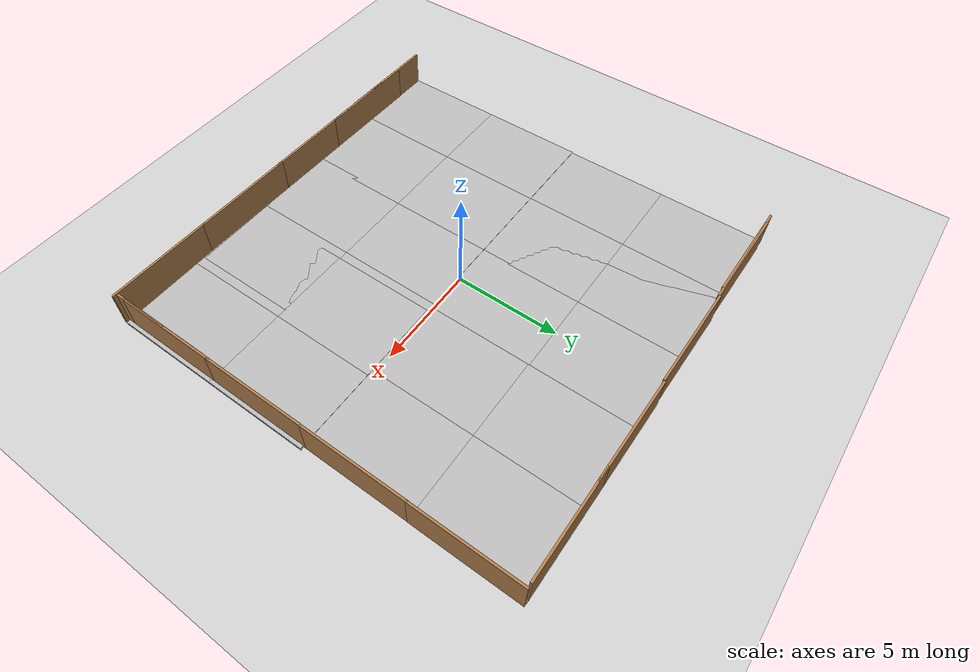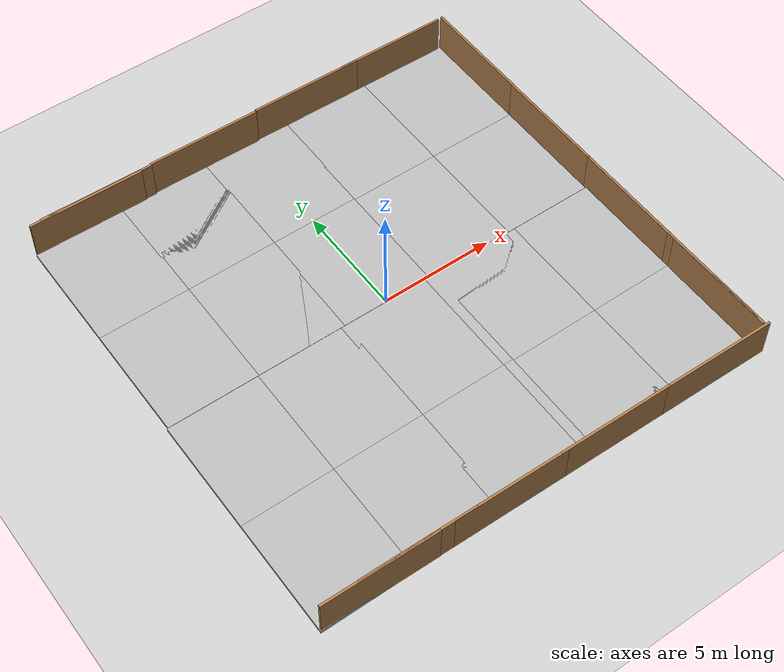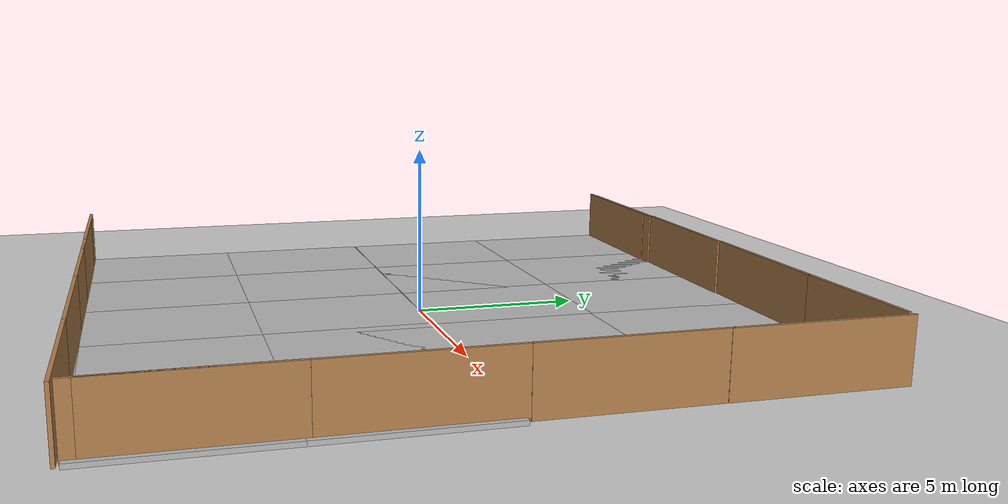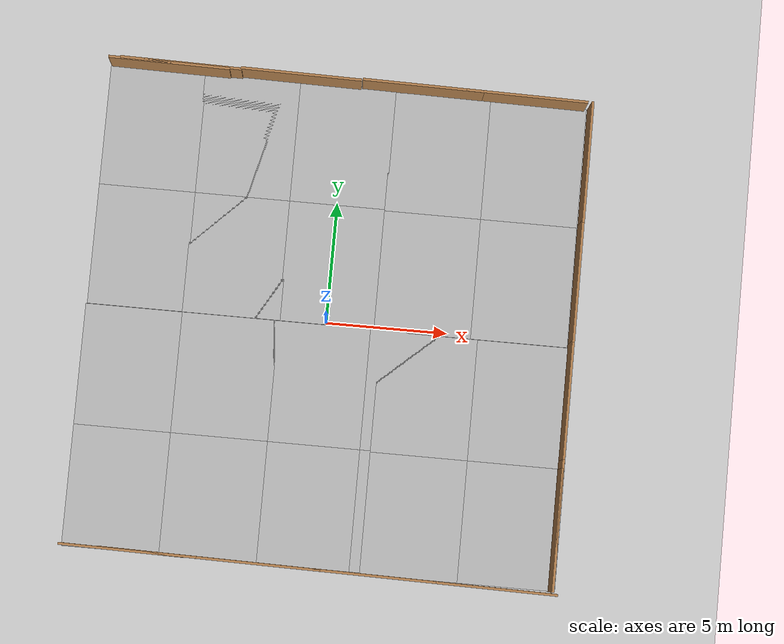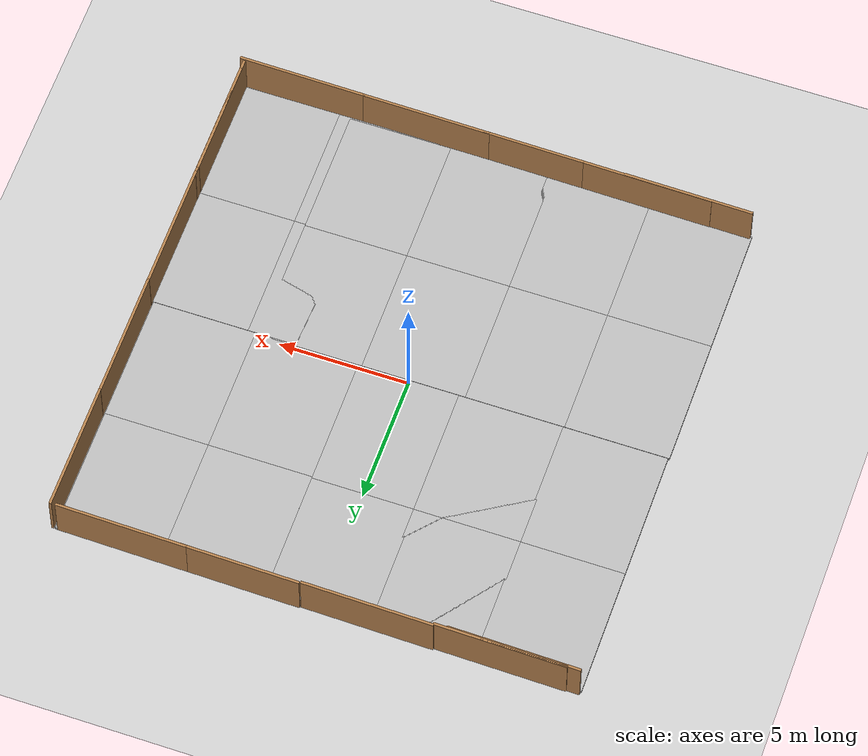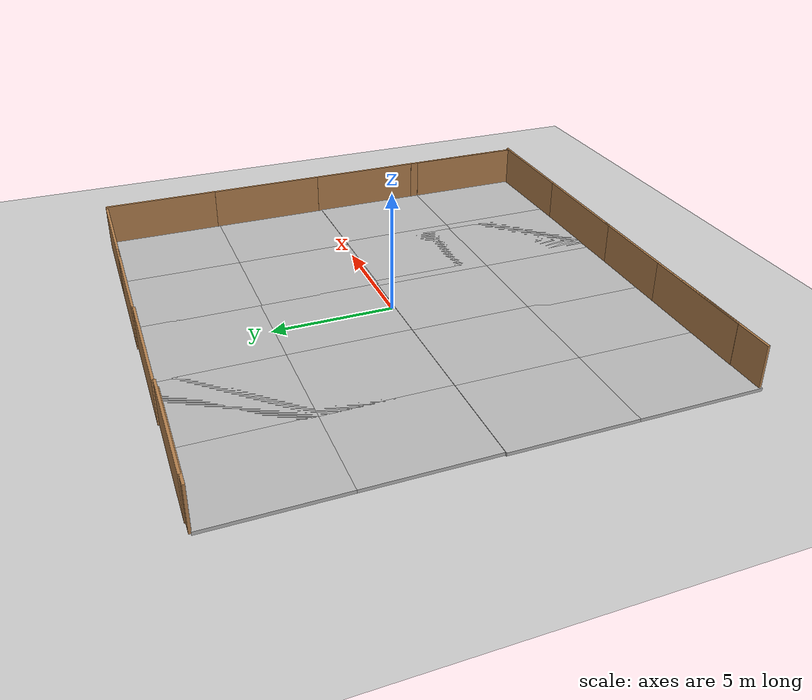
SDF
<sdf version="1.7">
 <world name="default">
  <model name="ground_plane">
   <static>1</static>
   <link name="link">
    <collision name="collision">
     <geometry><plane><normal>0 0 1</normal><size>100 100</size></plane></geometry>
     <surface><friction><ode><mu>100</mu><mu2>50</mu2></ode></friction></surface>
    </collision>
    <visual name="visual">
     <cast_shadows>0</cast_shadows>
     <geometry><plane><normal>0 0 1</normal><size>100 100</size></plane></geometry>
     <material>
      <script><uri>file://media/materials/scripts/gazebo.material</uri><name>Gazebo/Grey</name></script>
     </material>
    </visual>
   </link>
  </model>
  <gravity>0 0 -9.8</gravity>
  <magnetic_field>6e-06 2.3e-05 -4.2e-05</magnetic_field>
  <atmosphere type="adiabatic"/>
  <physics name="default_physics" default="0" type="ode">
   <max_step_size>0.001</max_step_size>
   <real_time_factor>1</real_time_factor>
   <real_time_update_rate>1000</real_time_update_rate>
  </physics>
  <scene><ambient>0.4 0.4 0.4 1</ambient><background>0.7 0.7 0.7 1</background><shadows>1</shadows></scene>
  <spherical_coordinates>
   <surface_model>EARTH_WGS84</surface_model>
   <latitude_deg>0</latitude_deg>
   <longitude_deg>0</longitude_deg>
   <elevation>0</elevation>
   <heading_deg>0</heading_deg>
  </spherical_coordinates>
  <model name="fence_clone_1">
   <static>1</static>
   <link name="link">
    <pose>0 0 0.915 0 -0 0</pose>
    <collision name="collision"><geometry><box><size>0.1 5 1.83</size></box></geometry></collision>
    <visual name="visual">
     <cast_shadows>0</cast_shadows>
     <geometry><box><size>0.1 5 1.83</size></box></geometry>
     <material>
      <script>
       <uri>https://fuel.gazebosim.org/1.0/athackst/models/fence/2/files/materials/scripts</uri>
       <uri>https://fuel.gazebosim.org/1.0/athackst/models/fence/2/files/materials/textures</uri>
       <name>Fence/WoodBoarding</name>
      </script>
     </material>
    </visual>
   </link>
   <pose>10.0636 7.36821 0 0 -0 0</pose>
  </model>
  <model name="fence_clone_2">
   <static>1</static>
   <link name="link">
    <pose>0 0 0.915 0 -0 0</pose>
    <collision name="collision"><geometry><box><size>0.1 5 1.83</size></box></geometry></collision>
    <visual name="visual">
     <cast_shadows>0</cast_shadows>
     <geometry><box><size>0.1 5 1.83</size></box></geometry>
     <material>
      <script>
       <uri>https://fuel.gazebosim.org/1.0/athackst/models/fence/2/files/materials/scripts</uri>
       <uri>https://fuel.gazebosim.org/1.0/athackst/models/fence/2/files/materials/textures</uri>
       <name>Fence/WoodBoarding</name>
      </script>
     </material>
    </visual>
   </link>
   <pose>10.056 2.45698 0 0 -0 0</pose>
  </model>
  <model name="fence_clone_3">
   <static>1</static>
   <link name="link">
    <pose>0 0 0.915 0 -0 0</pose>
    <collision name="collision"><geometry><box><size>0.1 5 1.83</size></box></geometry></collision>
    <visual name="visual">
     <cast_shadows>0</cast_shadows>
     <geometry><box><size>0.1 5 1.83</size></box></geometry>
     <material>
      <script>
       <uri>https://fuel.gazebosim.org/1.0/athackst/models/fence/2/files/materials/scripts</uri>
       <uri>https://fuel.gazebosim.org/1.0/athackst/models/fence/2/files/materials/textures</uri>
       <name>Fence/WoodBoarding</name>
      </script>
     </material>
    </visual>
   </link>
   <pose>10.05 -2.48927 0 0 -0 0</pose>
  </model>
  <model name="fence_clone_4">
   <static>1</static>
   <link name="link">
    <pose>0 0 0.915 0 -0 0</pose>
    <collision name="collision"><geometry><box><size>0.1 5 1.83</size></box></geometry></collision>
    <visual name="visual">
     <cast_shadows>0</cast_shadows>
     <geometry><box><size>0.1 5 1.83</size></box></geometry>
     <material>
      <script>
       <uri>https://fuel.gazebosim.org/1.0/athackst/models/fence/2/files/materials/scripts</uri>
       <uri>https://fuel.gazebosim.org/1.0/athackst/models/fence/2/files/materials/textures</uri>
       <name>Fence/WoodBoarding</name>
      </script>
     </material>
    </visual>
   </link>
   <pose>10.0459 -7.31564 0 0 -0 0</pose>
  </model>
  <model name="fence_clone_5">
   <static>1</static>
   <link name="link">
    <pose>0 0 0.915 0 -0 0</pose>
    <collision name="collision"><geometry><box><size>0.1 5 1.83</size></box></geometry></collision>
    <visual name="visual">
     <cast_shadows>0</cast_shadows>
     <geometry><box><size>0.1 5 1.83</size></box></geometry>
     <material>
      <script>
       <uri>https://fuel.gazebosim.org/1.0/athackst/models/fence/2/files/materials/scripts</uri>
       <uri>https://fuel.gazebosim.org/1.0/athackst/models/fence/2/files/materials/textures</uri>
       <name>Fence/WoodBoarding</name>
      </script>
     </material>
    </visual>
   </link>
   <pose>10.04 -7.666 0 0 -0 0</pose>
  </model>
  <model name="fence_clone_6">
   <static>1</static>
   <link name="link">
    <pose>0 0 0.915 0 -0 0</pose>
    <collision name="collision"><geometry><box><size>0.1 5 1.83</size></box></geometry></collision>
    <visual name="visual">
     <cast_shadows>0</cast_shadows>
     <geometry><box><size>0.1 5 1.83</size></box></geometry>
     <material>
      <script>
       <uri>https://fuel.gazebosim.org/1.0/athackst/models/fence/2/files/materials/scripts</uri>
       <uri>https://fuel.gazebosim.org/1.0/athackst/models/fence/2/files/materials/textures</uri>
       <name>Fence/WoodBoarding</name>
      </script>
     </material>
    </visual>
   </link>
   <pose>7.74359 -10.2293 -0 0 0 -1.58413</pose>
  </model>
  <model name="fence_clone_6_clone">
   <static>1</static>
   <link name="link">
    <pose>0 0 0.915 0 -0 0</pose>
    <collision name="collision"><geometry><box><size>0.1 5 1.83</size></box></geometry></collision>
    <visual name="visual">
     <cast_shadows>0</cast_shadows>
     <geometry><box><size>0.1 5 1.83</size></box></geometry>
     <material>
      <script>
       <uri>https://fuel.gazebosim.org/1.0/athackst/models/fence/2/files/materials/scripts</uri>
       <uri>https://fuel.gazebosim.org/1.0/athackst/models/fence/2/files/materials/textures</uri>
       <name>Fence/WoodBoarding</name>
      </script>
     </material>
    </visual>
   </link>
   <pose>2.8432 -10.1621 -0 0 0 -1.58413</pose>
  </model>
  <model name="fence_clone_6_clone_0">
   <static>1</static>
   <link name="link">
    <pose>0 0 0.915 0 -0 0</pose>
    <collision name="collision"><geometry><box><size>0.1 5 1.83</size></box></geometry></collision>
    <visual name="visual">
     <cast_shadows>0</cast_shadows>
     <geometry><box><size>0.1 5 1.83</size></box></geometry>
     <material>
      <script>
       <uri>https://fuel.gazebosim.org/1.0/athackst/models/fence/2/files/materials/scripts</uri>
       <uri>https://fuel.gazebosim.org/1.0/athackst/models/fence/2/files/materials/textures</uri>
       <name>Fence/WoodBoarding</name>
      </script>
     </material>
    </visual>
   </link>
   <pose>-1.83838 -10.102 -0 0 0 -1.58413</pose>
  </model>
  <model name="fence_clone_6_clone_1">
   <static>1</static>
   <link name="link">
    <pose>0 0 0.915 0 -0 0</pose>
    <collision name="collision"><geometry><box><size>0.1 5 1.83</size></box></geometry></collision>
    <visual name="visual">
     <cast_shadows>0</cast_shadows>
     <geometry><box><size>0.1 5 1.83</size></box></geometry>
     <material>
      <script>
       <uri>https://fuel.gazebosim.org/1.0/athackst/models/fence/2/files/materials/scripts</uri>
       <uri>https://fuel.gazebosim.org/1.0/athackst/models/fence/2/files/materials/textures</uri>
       <name>Fence/WoodBoarding</name>
      </script>
     </material>
    </visual>
   </link>
   <pose>-5.84292 -10.048 -0 0 0 -1.58413</pose>
  </model>
  <model name="fence_clone_6_clone_2">
   <static>1</static>
   <link name="link">
    <pose>0 0 0.915 0 -0 0</pose>
    <collision name="collision"><geometry><box><size>0.1 5 1.83</size></box></geometry></collision>
    <visual name="visual">
     <cast_shadows>0</cast_shadows>
     <geometry><box><size>0.1 5 1.83</size></box></geometry>
     <material>
      <script>
       <uri>https://fuel.gazebosim.org/1.0/athackst/models/fence/2/files/materials/scripts</uri>
       <uri>https://fuel.gazebosim.org/1.0/athackst/models/fence/2/files/materials/textures</uri>
       <name>Fence/WoodBoarding</name>
      </script>
     </material>
    </visual>
   </link>
   <pose>-7.42735 -10.0411 -0 0 0 -1.58413</pose>
  </model>
  <model name="fence_clone_6_clone_3">
   <static>1</static>
   <link name="link">
    <pose>0 0 0.915 0 -0 0</pose>
    <collision name="collision"><geometry><box><size>0.1 5 1.83</size></box></geometry></collision>
    <visual name="visual">
     <cast_shadows>0</cast_shadows>
     <geometry><box><size>0.1 5 1.83</size></box></geometry>
     <material>
      <script>
       <uri>https://fuel.gazebosim.org/1.0/athackst/models/fence/2/files/materials/scripts</uri>
       <uri>https://fuel.gazebosim.org/1.0/athackst/models/fence/2/files/materials/textures</uri>
       <name>Fence/WoodBoarding</name>
      </script>
     </material>
    </visual>
   </link>
   <pose>7.37253 9.86478 -0 0 0 -1.58413</pose>
  </model>
  <model name="fence_clone_6_clone_4">
   <static>1</static>
   <link name="link">
    <pose>0 0 0.915 0 -0 0</pose>
    <collision name="collision"><geometry><box><size>0.1 5 1.83</size></box></geometry></collision>
    <visual name="visual">
     <cast_shadows>0</cast_shadows>
     <geometry><box><size>0.1 5 1.83</size></box></geometry>
     <material>
      <script>
       <uri>https://fuel.gazebosim.org/1.0/athackst/models/fence/2/files/materials/scripts</uri>
       <uri>https://fuel.gazebosim.org/1.0/athackst/models/fence/2/files/materials/textures</uri>
       <name>Fence/WoodBoarding</name>
      </script>
     </material>
    </visual>
   </link>
   <pose>3.0991 9.9186 -0 0 0 -1.58413</pose>
  </model>
  <model name="fence_clone_6_clone_5">
   <static>1</static>
   <link name="link">
    <pose>0 0 0.915 0 -0 0</pose>
    <collision name="collision"><geometry><box><size>0.1 5 1.83</size></box></geometry></collision>
    <visual name="visual">
     <cast_shadows>0</cast_shadows>
     <geometry><box><size>0.1 5 1.83</size></box></geometry>
     <material>
      <script>
       <uri>https://fuel.gazebosim.org/1.0/athackst/models/fence/2/files/materials/scripts</uri>
       <uri>https://fuel.gazebosim.org/1.0/athackst/models/fence/2/files/materials/textures</uri>
       <name>Fence/WoodBoarding</name>
      </script>
     </material>
    </visual>
   </link>
   <pose>-1.92904 9.94278 -0 0 0 -1.58413</pose>
  </model>
  <model name="fence_clone_6_clone_6">
   <static>1</static>
   <link name="link">
    <pose>0 0 0.915 0 -0 0</pose>
    <collision name="collision"><geometry><box><size>0.1 5 1.83</size></box></geometry></collision>
    <visual name="visual">
     <cast_shadows>0</cast_shadows>
     <geometry><box><size>0.1 5 1.83</size></box></geometry>
     <material>
      <script>
       <uri>https://fuel.gazebosim.org/1.0/athackst/models/fence/2/files/materials/scripts</uri>
       <uri>https://fuel.gazebosim.org/1.0/athackst/models/fence/2/files/materials/textures</uri>
       <name>Fence/WoodBoarding</name>
      </script>
     </material>
    </visual>
   </link>
   <pose>-6.89076 9.95644 -0 0 0 -1.58413</pose>
  </model>
  <model name="fence_clone_6_clone_7">
   <static>1</static>
   <link name="link">
    <pose>0 0 0.915 0 -0 0</pose>
    <collision name="collision"><geometry><box><size>0.1 5 1.83</size></box></geometry></collision>
    <visual name="visual">
     <cast_shadows>0</cast_shadows>
     <geometry><box><size>0.1 5 1.83</size></box></geometry>
     <material>
      <script>
       <uri>https://fuel.gazebosim.org/1.0/athackst/models/fence/2/files/materials/scripts</uri>
       <uri>https://fuel.gazebosim.org/1.0/athackst/models/fence/2/files/materials/textures</uri>
       <name>Fence/WoodBoarding</name>
      </script>
     </material>
    </visual>
   </link>
   <pose>-7.37701 9.926 -0 0 0 -1.58413</pose>
  </model>
  <model name="mud_box">
   <static>1</static>
   <link name="link">
    <collision name="collision"><geometry><box><size>8 10 0.2</size></box></geometry></collision>
    <visual name="visual_1">
     <pose>-2 2.5 0 0 -0 0</pose>
     <cast_shadows>0</cast_shadows>
     <geometry><box><size>4 5 0.2</size></box></geometry>
     <material>
      <script>
       <uri>model://mud_box/materials/scripts</uri>
       <uri>model://mud_box/materials/textures</uri>
       <name>vrc/mud</name>
      </script>
     </material>
    </visual>
    <visual name="visual_2">
     <pose>2 2.5 0 0 -0 0</pose>
     <cast_shadows>0</cast_shadows>
     <geometry><box><size>4 5 0.2</size></box></geometry>
     <material>
      <script>
       <uri>model://mud_box/materials/scripts</uri>
       <uri>model://mud_box/materials/textures</uri>
       <name>vrc/mud</name>
      </script>
     </material>
    </visual>
    <visual name="visual_3">
     <pose>2 -2.5 0 0 -0 0</pose>
     <cast_shadows>0</cast_shadows>
     <geometry><box><size>4 5 0.2</size></box></geometry>
     <material>
      <script>
       <uri>model://mud_box/materials/scripts</uri>
       <uri>model://mud_box/materials/textures</uri>
       <name>vrc/mud</name>
      </script>
     </material>
    </visual>
    <visual name="visual_4">
     <pose>-2 -2.5 0 0 -0 0</pose>
     <cast_shadows>0</cast_shadows>
     <geometry><box><size>4 5 0.2</size></box></geometry>
     <material>
      <script>
       <uri>model://mud_box/materials/scripts</uri>
       <uri>model://mud_box/materials/textures</uri>
       <name>vrc/mud</name>
      </script>
     </material>
    </visual>
   </link>
   <pose>-5.96957 -5.08607 0 0 -0 0</pose>
  </model>
  <model name="mud_box_clone">
   <static>1</static>
   <link name="link">
    <collision name="collision"><geometry><box><size>8 10 0.2</size></box></geometry></collision>
    <visual name="visual_1">
     <pose>-2 2.5 0 0 -0 0</pose>
     <cast_shadows>0</cast_shadows>
     <geometry><box><size>4 5 0.2</size></box></geometry>
     <material>
      <script>
       <uri>model://mud_box/materials/scripts</uri>
       <uri>model://mud_box/materials/textures</uri>
       <name>vrc/mud</name>
      </script>
     </material>
    </visual>
    <visual name="visual_2">
     <pose>2 2.5 0 0 -0 0</pose>
     <cast_shadows>0</cast_shadows>
     <geometry><box><size>4 5 0.2</size></box></geometry>
     <material>
      <script>
       <uri>model://mud_box/materials/scripts</uri>
       <uri>model://mud_box/materials/textures</uri>
       <name>vrc/mud</name>
      </script>
     </material>
    </visual>
    <visual name="visual_3">
     <pose>2 -2.5 0 0 -0 0</pose>
     <cast_shadows>0</cast_shadows>
     <geometry><box><size>4 5 0.2</size></box></geometry>
     <material>
      <script>
       <uri>model://mud_box/materials/scripts</uri>
       <uri>model://mud_box/materials/textures</uri>
       <name>vrc/mud</name>
      </script>
     </material>
    </visual>
    <visual name="visual_4">
     <pose>-2 -2.5 0 0 -0 0</pose>
     <cast_shadows>0</cast_shadows>
     <geometry><box><size>4 5 0.2</size></box></geometry>
     <material>
      <script>
       <uri>model://mud_box/materials/scripts</uri>
       <uri>model://mud_box/materials/textures</uri>
       <name>vrc/mud</name>
      </script>
     </material>
    </visual>
   </link>
   <pose>1.83522 -5.08816 0 0 -0 0</pose>
  </model>
  <model name="mud_box_clone_0">
   <static>1</static>
   <link name="link">
    <collision name="collision"><geometry><box><size>8 10 0.2</size></box></geometry></collision>
    <visual name="visual_1">
     <pose>-2 2.5 0 0 -0 0</pose>
     <cast_shadows>0</cast_shadows>
     <geometry><box><size>4 5 0.2</size></box></geometry>
     <material>
      <script>
       <uri>model://mud_box/materials/scripts</uri>
       <uri>model://mud_box/materials/textures</uri>
       <name>vrc/mud</name>
      </script>
     </material>
    </visual>
    <visual name="visual_2">
     <pose>2 2.5 0 0 -0 0</pose>
     <cast_shadows>0</cast_shadows>
     <geometry><box><size>4 5 0.2</size></box></geometry>
     <material>
      <script>
       <uri>model://mud_box/materials/scripts</uri>
       <uri>model://mud_box/materials/textures</uri>
       <name>vrc/mud</name>
      </script>
     </material>
    </visual>
    <visual name="visual_3">
     <pose>2 -2.5 0 0 -0 0</pose>
     <cast_shadows>0</cast_shadows>
     <geometry><box><size>4 5 0.2</size></box></geometry>
     <material>
      <script>
       <uri>model://mud_box/materials/scripts</uri>
       <uri>model://mud_box/materials/textures</uri>
       <name>vrc/mud</name>
      </script>
     </material>
    </visual>
    <visual name="visual_4">
     <pose>-2 -2.5 0 0 -0 0</pose>
     <cast_shadows>0</cast_shadows>
     <geometry><box><size>4 5 0.2</size></box></geometry>
     <material>
      <script>
       <uri>model://mud_box/materials/scripts</uri>
       <uri>model://mud_box/materials/textures</uri>
       <name>vrc/mud</name>
      </script>
     </material>
    </visual>
   </link>
   <pose>6.26801 -5.13742 0 0 -0 0</pose>
  </model>
  <model name="mud_box_clone_1">
   <static>1</static>
   <link name="link">
    <collision name="collision"><geometry><box><size>8 10 0.2</size></box></geometry></collision>
    <visual name="visual_1">
     <pose>-2 2.5 0 0 -0 0</pose>
     <cast_shadows>0</cast_shadows>
     <geometry><box><size>4 5 0.2</size></box></geometry>
     <material>
      <script>
       <uri>model://mud_box/materials/scripts</uri>
       <uri>model://mud_box/materials/textures</uri>
       <name>vrc/mud</name>
      </script>
     </material>
    </visual>
    <visual name="visual_2">
     <pose>2 2.5 0 0 -0 0</pose>
     <cast_shadows>0</cast_shadows>
     <geometry><box><size>4 5 0.2</size></box></geometry>
     <material>
      <script>
       <uri>model://mud_box/materials/scripts</uri>
       <uri>model://mud_box/materials/textures</uri>
       <name>vrc/mud</name>
      </script>
     </material>
    </visual>
    <visual name="visual_3">
     <pose>2 -2.5 0 0 -0 0</pose>
     <cast_shadows>0</cast_shadows>
     <geometry><box><size>4 5 0.2</size></box></geometry>
     <material>
      <script>
       <uri>model://mud_box/materials/scripts</uri>
       <uri>model://mud_box/materials/textures</uri>
       <name>vrc/mud</name>
      </script>
     </material>
    </visual>
    <visual name="visual_4">
     <pose>-2 -2.5 0 0 -0 0</pose>
     <cast_shadows>0</cast_shadows>
     <geometry><box><size>4 5 0.2</size></box></geometry>
     <material>
      <script>
       <uri>model://mud_box/materials/scripts</uri>
       <uri>model://mud_box/materials/textures</uri>
       <name>vrc/mud</name>
      </script>
     </material>
    </visual>
   </link>
   <pose>5.96971 4.87203 0 0 -0 0</pose>
  </model>
  <model name="mud_box_clone_2">
   <static>1</static>
   <link name="link">
    <collision name="collision"><geometry><box><size>8 10 0.2</size></box></geometry></collision>
    <visual name="visual_1">
     <pose>-2 2.5 0 0 -0 0</pose>
     <cast_shadows>0</cast_shadows>
     <geometry><box><size>4 5 0.2</size></box></geometry>
     <material>
      <script>
       <uri>model://mud_box/materials/scripts</uri>
       <uri>model://mud_box/materials/textures</uri>
       <name>vrc/mud</name>
      </script>
     </material>
    </visual>
    <visual name="visual_2">
     <pose>2 2.5 0 0 -0 0</pose>
     <cast_shadows>0</cast_shadows>
     <geometry><box><size>4 5 0.2</size></box></geometry>
     <material>
      <script>
       <uri>model://mud_box/materials/scripts</uri>
       <uri>model://mud_box/materials/textures</uri>
       <name>vrc/mud</name>
      </script>
     </material>
    </visual>
    <visual name="visual_3">
     <pose>2 -2.5 0 0 -0 0</pose>
     <cast_shadows>0</cast_shadows>
     <geometry><box><size>4 5 0.2</size></box></geometry>
     <material>
      <script>
       <uri>model://mud_box/materials/scripts</uri>
       <uri>model://mud_box/materials/textures</uri>
       <name>vrc/mud</name>
      </script>
     </material>
    </visual>
    <visual name="visual_4">
     <pose>-2 -2.5 0 0 -0 0</pose>
     <cast_shadows>0</cast_shadows>
     <geometry><box><size>4 5 0.2</size></box></geometry>
     <material>
      <script>
       <uri>model://mud_box/materials/scripts</uri>
       <uri>model://mud_box/materials/textures</uri>
       <name>vrc/mud</name>
      </script>
     </material>
    </visual>
   </link>
   <pose>-1.97952 4.92272 0 0 -0 0</pose>
  </model>
  <model name="mud_box_clone_3">
   <static>1</static>
   <link name="link">
    <collision name="collision"><geometry><box><size>8 10 0.2</size></box></geometry></collision>
    <visual name="visual_1">
     <pose>-2 2.5 0 0 -0 0</pose>
     <cast_shadows>0</cast_shadows>
     <geometry><box><size>4 5 0.2</size></box></geometry>
     <material>
      <script>
       <uri>model://mud_box/materials/scripts</uri>
       <uri>model://mud_box/materials/textures</uri>
       <name>vrc/mud</name>
      </script>
     </material>
    </visual>
    <visual name="visual_2">
     <pose>2 2.5 0 0 -0 0</pose>
     <cast_shadows>0</cast_shadows>
     <geometry><box><size>4 5 0.2</size></box></geometry>
     <material>
      <script>
       <uri>model://mud_box/materials/scripts</uri>
       <uri>model://mud_box/materials/textures</uri>
       <name>vrc/mud</name>
      </script>
     </material>
    </visual>
    <visual name="visual_3">
     <pose>2 -2.5 0 0 -0 0</pose>
     <cast_shadows>0</cast_shadows>
     <geometry><box><size>4 5 0.2</size></box></geometry>
     <material>
      <script>
       <uri>model://mud_box/materials/scripts</uri>
       <uri>model://mud_box/materials/textures</uri>
       <name>vrc/mud</name>
      </script>
     </material>
    </visual>
    <visual name="visual_4">
     <pose>-2 -2.5 0 0 -0 0</pose>
     <cast_shadows>0</cast_shadows>
     <geometry><box><size>4 5 0.2</size></box></geometry>
     <material>
      <script>
       <uri>model://mud_box/materials/scripts</uri>
       <uri>model://mud_box/materials/textures</uri>
       <name>vrc/mud</name>
      </script>
     </material>
    </visual>
   </link>
   <pose>-5.91882 4.9265 0 0 -0 0</pose>
  </model>
  <light name="sun" type="directional">
   <pose>-8.60326 -4.7297 10 0 -0 0</pose>
   <diffuse>0.8 0.8 0.8 1</diffuse>
   <specular>0.2 0.2 0.2 1</specular>
   <attenuation>
    <range>1000</range>
    <constant>0.9</constant>
    <linear>0.01</linear>
    <quadratic>0.001</quadratic>
   </attenuation>
   <direction>-0.5 0.1 -0.9</direction>
  </light>
  <light name="user_point_light_0" type="point">
   <pose>-7.27013 -6.08334 1 0 -0 0</pose>
   <diffuse>0.5 0.5 0.5 1</diffuse>
   <specular>0.1 0.1 0.1 1</specular>
   <attenuation>
    <range>20</range>
    <constant>0.5</constant>
    <linear>0.01</linear>
    <quadratic>0.001</quadratic>
   </attenuation>
   <cast_shadows>0</cast_shadows>
   <direction>0 0 -1</direction>
  </light>
  <light name="user_directional_light_0" type="directional">
   <pose>2.9441 -2.35748 1 0 -0 0</pose>
   <diffuse>0.5 0.5 0.5 1</diffuse>
   <specular>0.1 0.1 0.1 1</specular>
   <direction>0.1 0.1 -0.9</direction>
   <attenuation>
    <range>20</range>
    <constant>0.5</constant>
    <linear>0.01</linear>
    <quadratic>0.001</quadratic>
   </attenuation>
  </light>
 </world>
</sdf>
